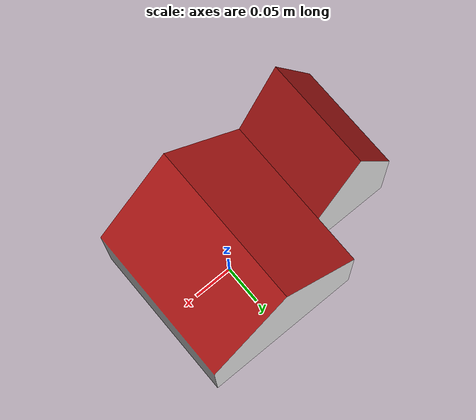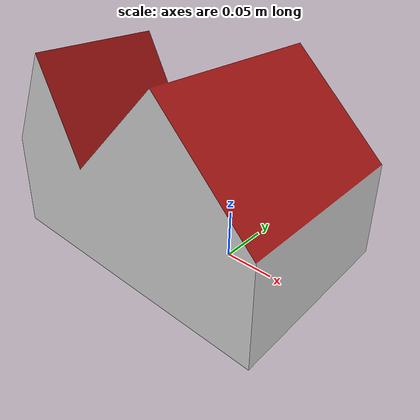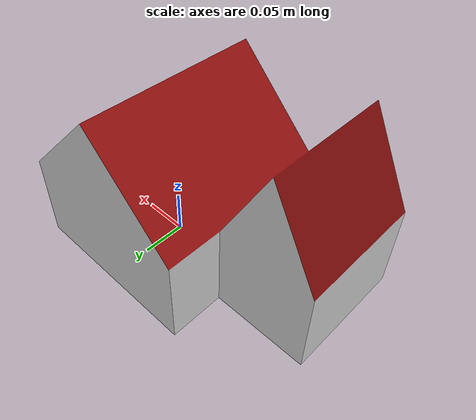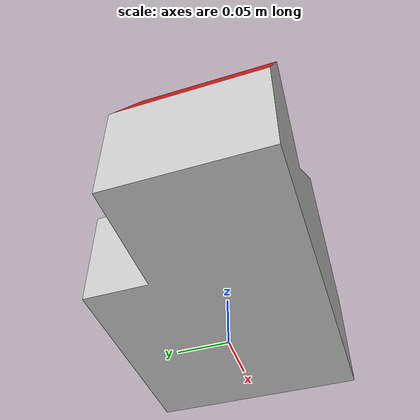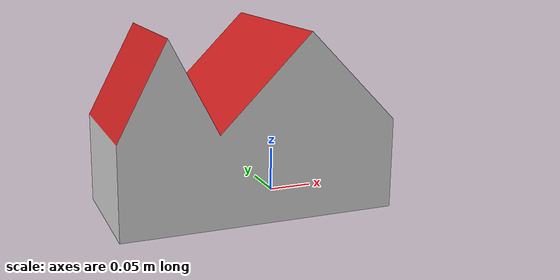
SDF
<?xml version="1.0" ?>
<sdf version="1.8">
  <model name="DecoHouse2">
    <static>true</static>
    <link name="DecoHouse2">
      <visual name="visual">
        <geometry>
          <mesh>
            <uri>model://YahboomTrack/DecoHouse2/meshes/DecoHouse2.dae</uri>
            <scale>2.0 2.0 2.0</scale>
          </mesh>
        </geometry>
      </visual>
      <collision name="visual">
        <geometry>
          <mesh>
            <uri>model://YahboomTrack/DecoHouse2/meshes/DecoHouse2.dae</uri>
            <scale>2.0 2.0 2.0</scale>
          </mesh>
        </geometry>
      </collision>
    </link>
  </model>
</sdf>
